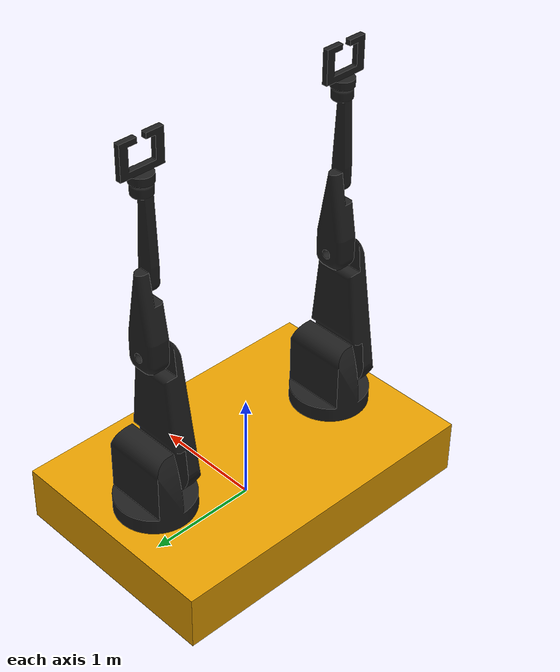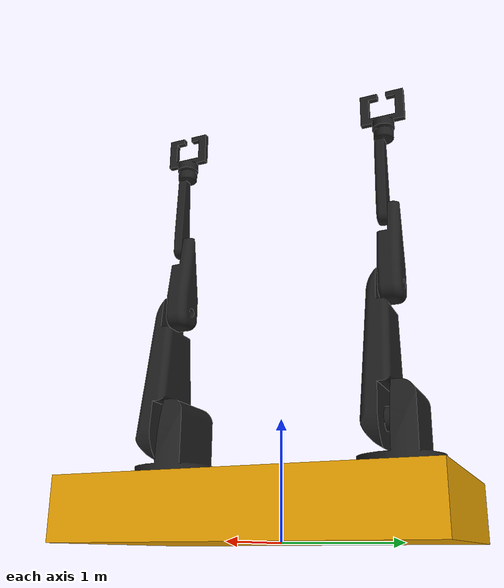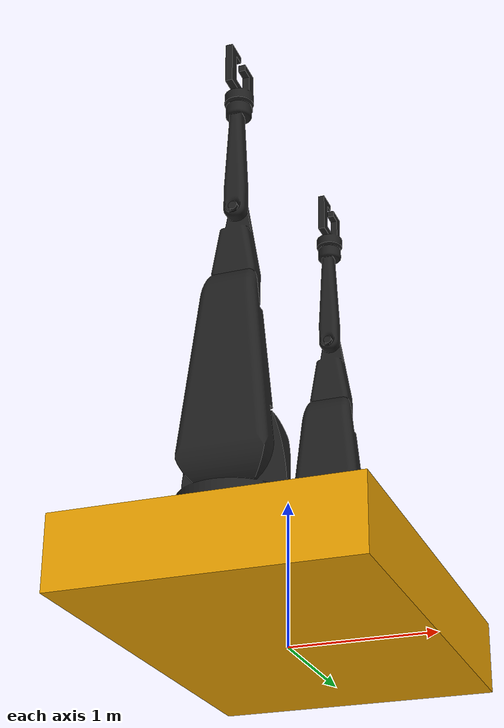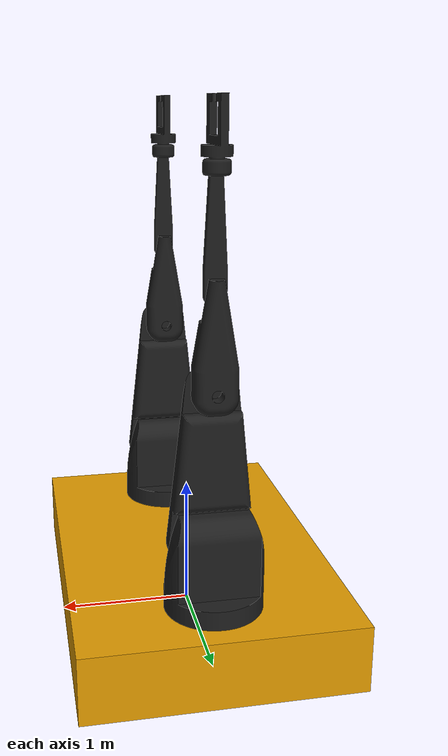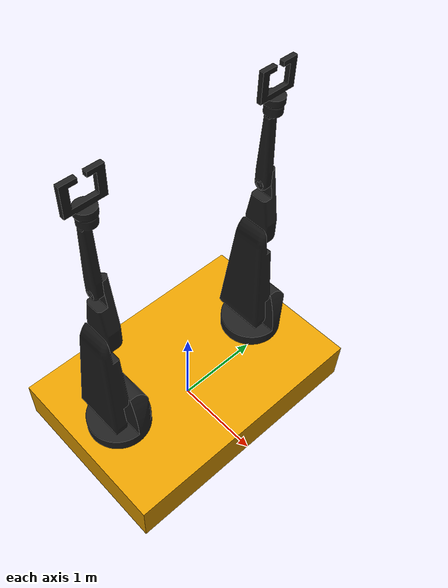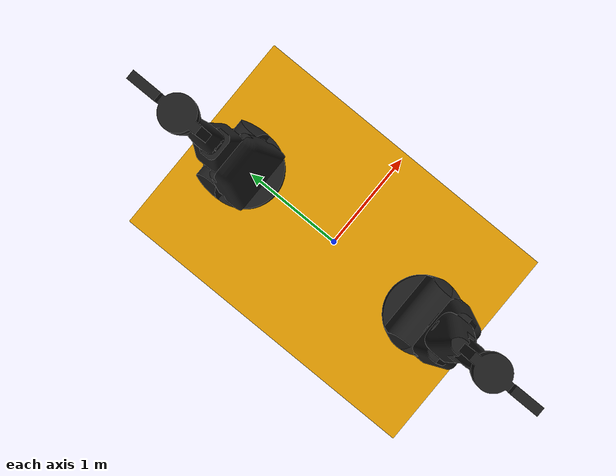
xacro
<?xml version="1.0" ?>

<robot name="tomato" xmlns:xacro="http://www.ros.org/wiki/xacro">

    <xacro:include filename="$(find tomato_description)/urdf/links_joints.xacro" />

    <!-- BGN ARM 0-->
    <m_link_box name="base_link"
              origin_rpy="0 0 0" origin_xyz="0 0 0.25"
              mass="10024"
              ixx="170.667" ixy="0" ixz="0"
              iyy="170.667" iyz="0"
              izz="170.667"
              size="2 3 0.5" />

    <m_joint name="base_link__link_01" type="revolute"
           axis_xyz="0 0 1"
           origin_rpy="0 0 0" origin_xyz="0 -1 0.5"
           parent="base_link" child="link_01"
           limit_e="1000" limit_l="-3.14" limit_u="3.14" limit_v="0.5" />

    <m_link_mesh name="link_01"
              origin_rpy="1.57 0 1.57" origin_xyz="-0.35 -0.35 0"
              mass="17.78"
              ixx="8.68" ixy="0" ixz="0"
              iyy="6.98" iyz="0"
              izz="5.98"
              meshfile="package://tomato_description/meshes/Link_1.STL"
              meshscale="0.001 0.001 0.001"/>

    <m_joint name="link_01__link_02" type="revolute"
           axis_xyz="0 1 0"
           origin_rpy="0 0 0" origin_xyz="0 0 0.44"
           parent="link_01" child="link_02"
           limit_e="1000" limit_l="-1.57" limit_u="1.57" limit_v="0.5" />

    <m_link_mesh name="link_02"
              origin_rpy="1.57 0 1.57" origin_xyz="-0.30 -0.25 -0.25"
              mass="10"
              ixx="12.679" ixy="0" ixz="0"
              iyy="12.679" iyz="0"
              izz="0.651"
              meshfile="package://tomato_description/meshes/Link_2.STL"
              meshscale="0.001 0.001 0.001"/>

    <m_joint name="link_02__link_03" type="revolute"
           axis_xyz="0 1 0"
           origin_rpy="0 0 0" origin_xyz="0 0 1.12"
           parent="link_02" child="link_03"
           limit_e="1000" limit_l="-1.57" limit_u="1.57" limit_v="0.5" />

    <m_link_mesh name="link_03"
              origin_rpy="1.57 0 1.57" origin_xyz="-0.15 -0.10 -0.15"
              mass="10"
              ixx="12.679" ixy="0" ixz="0"
              iyy="12.679" iyz="0"
              izz="0.651"
              meshfile="package://tomato_description/meshes/Link_3.STL"
              meshscale="0.001 0.001 0.001"/>

    <m_joint name="link_03__link_04" type="revolute"
           axis_xyz="0 1 0"
           origin_rpy="0 0 0" origin_xyz="0 0 0.64"
           parent="link_03" child="link_04"
           limit_e="1000" limit_l="-1.57" limit_u="1.57" limit_v="0.5" />

    <m_link_mesh name="link_04"
              origin_rpy="1.57 0 1.57" origin_xyz="-0.09 -0.10 -0.07"
              mass="10"
              ixx="12.679" ixy="0" ixz="0"
              iyy="12.679" iyz="0"
              izz="0.651"
              meshfile="package://tomato_description/meshes/Link_4.STL"
              meshscale="0.001 0.001 0.001"/>

    <m_joint name="link_04__link_05" type="revolute"
           axis_xyz="0 0 1"
           origin_rpy="0 0 0" origin_xyz="0 -0.01 0.8"
           parent="link_04" child="link_05"
           limit_e="1000" limit_l="-3.14" limit_u="3.14" limit_v="0.5" />

    <m_link_mesh name="link_05"
              origin_rpy="1.57 0 1.57" origin_xyz="-0.1 -0.2 0"
              mass="10"
              ixx="4.167" ixy="0" ixz="0"
              iyy="4.167" iyz="0"
              izz="4.167"
              meshfile="package://tomato_description/meshes/Link_5.STL"
              meshscale="0.001 0.001 0.001"/>

 <!--END ARM 0-->

 <!--BGN ARM 1-->

    <m_joint name="base_link__link_11" type="revolute"
           axis_xyz="0 0 1"
           origin_rpy="0 0 0" origin_xyz="0 1 0.5"
           parent="base_link" child="link_11"
           limit_e="1000" limit_l="-3.14" limit_u="3.14" limit_v="0.5" />

    <m_link_mesh name="link_11"
              origin_rpy="1.57 0 1.57" origin_xyz="-0.35 -0.35 0"
              mass="17.78"
              ixx="8.68" ixy="0" ixz="0"
              iyy="6.98" iyz="0"
              izz="5.98"
              meshfile="package://tomato_description/meshes/Link_1.STL"
              meshscale="0.001 0.001 0.001"/>

    <m_joint name="link_11__link_12" type="revolute"
           axis_xyz="0 1 0"
           origin_rpy="0 0 0" origin_xyz="0 0 0.44"
           parent="link_11" child="link_12"
           limit_e="1000" limit_l="-1.57" limit_u="1.57" limit_v="0.5" />

    <m_link_mesh name="link_12"
              origin_rpy="1.57 0 1.57" origin_xyz="-0.30 -0.25 -0.25"
              mass="0.1"
              ixx="12.679" ixy="0" ixz="0"
              iyy="12.679" iyz="0"
              izz="0.651"
              meshfile="package://tomato_description/meshes/Link_2.STL"
              meshscale="0.001 0.001 0.001"/>

    <m_joint name="link_12__link_13" type="revolute"
           axis_xyz="0 1 0"
           origin_rpy="0 0 0" origin_xyz="0 0 1.12"
           parent="link_12" child="link_13"
           limit_e="1000" limit_l="-1.57" limit_u="1.57" limit_v="0.5" />

    <m_link_mesh name="link_13"
              origin_rpy="1.57 0 1.57" origin_xyz="-0.15 -0.10 -0.15"
              mass="1"
              ixx="12.679" ixy="0" ixz="0"
              iyy="12.679" iyz="0"
              izz="0.651"
              meshfile="package://tomato_description/meshes/Link_3.STL"
              meshscale="0.001 0.001 0.001"/>

    <m_joint name="link_13__link_14" type="revolute"
           axis_xyz="0 1 0"
           origin_rpy="0 0 0" origin_xyz="0 0 0.64"
           parent="link_13" child="link_14"
           limit_e="1000" limit_l="-1.57" limit_u="1.57" limit_v="0.5" />

    <m_link_mesh name="link_14"
              origin_rpy="1.57 0 1.57" origin_xyz="-0.09 -0.10 -0.07"
              mass="0.1"
              ixx="12.679" ixy="0" ixz="0"
              iyy="12.679" iyz="0"
              izz="0.651"
              meshfile="package://tomato_description/meshes/Link_4.STL"
              meshscale="0.001 0.001 0.001"/>

    <m_joint name="link_14__link_15" type="revolute"
           axis_xyz="0 0 1"
           origin_rpy="0 0 0" origin_xyz="0 -0.01 0.8"
           parent="link_14" child="link_15"
           limit_e="1000" limit_l="-3.14" limit_u="3.14" limit_v="0.5" />

    <m_link_mesh name="link_15"
              origin_rpy="1.57 0 1.57" origin_xyz="-0.1 -0.2 0"
              mass="0.1"
              ixx="4.167" ixy="0" ixz="0"
              iyy="4.167" iyz="0"
              izz="4.167"
              meshfile="package://tomato_description/meshes/Link_5.STL"
              meshscale="0.001 0.001 0.001"/>

    <!--END ARM 1-->

    <gazebo>
        <plugin name="gazebo_ros_control" filename="libgazebo_ros_control.so">
        </plugin>
    </gazebo>

</robot>

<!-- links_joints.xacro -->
<robot xmlns:xacro="http://www.ros.org/wiki/xacro">

   <xacro:macro name="m_joint" params="name type axis_xyz origin_rpy origin_xyz parent child limit_e limit_l limit_u limit_v">
        <joint name="${name}" type="${type}">
            <axis xyz="${axis_xyz}" />
            <limit effort="${limit_e}" lower="${limit_l}" upper="${limit_u}" velocity="${limit_v}" />
            <origin rpy="${origin_rpy}" xyz="${origin_xyz}" />
            <parent link="${parent}" />
            <child link="${child}" />
        </joint>
        <transmission name="trans_${name}">
            <type>transmission_interface/SimpleTransmission</type>
            <joint name="${name}">
                <hardwareInterface>hardware_interface/EffortJointInterface</hardwareInterface>
            </joint>
            <actuator name="motor_${name}">
                <hardwareInterface>hardware_interface/EffortJointInterface</hardwareInterface>
                <mechanicalReduction>1</mechanicalReduction>
            </actuator>
        </transmission>
    </xacro:macro>

    <xacro:macro name="m_link_box" params="name origin_xyz origin_rpy size mass ixx ixy ixz iyy iyz izz">
        <link name="${name}">
        <inertial>
            <mass value="${mass}" />
            <origin rpy="${origin_rpy}" xyz="${origin_xyz}" />
            <inertia ixx="${ixx}" ixy="${ixy}" ixz="${ixz}" iyy="${iyy}" iyz="${iyz}" izz="${izz}" />
        </inertial>
        <collision>
            <origin rpy="${origin_rpy}" xyz="${origin_xyz}" />
            <geometry>
            <box size="${size}" />
            </geometry>
        </collision>
        <visual>
            <origin rpy="${origin_rpy}" xyz="${origin_xyz}" />
            <geometry>
            <box size="${size}" />
            </geometry>
        </visual>
        </link>
    </xacro:macro>

    <xacro:macro name="m_link_cylinder" params="name origin_xyz origin_rpy radius length mass ixx ixy ixz iyy iyz izz">
        <link name="${name}">
        <inertial>
            <mass value="${mass}" />
            <origin rpy="${origin_rpy}" xyz="${origin_xyz}" />
            <inertia ixx="${ixx}" ixy="${ixy}" ixz="${ixz}" iyy="${iyy}" iyz="${iyz}" izz="${izz}" />
        </inertial>
        <collision>
            <origin rpy="${origin_rpy}" xyz="${origin_xyz}" />
            <geometry>
            <cylinder radius="${radius}" length="${length}" />
            </geometry>
        </collision>
        <visual>
            <origin rpy="${origin_rpy}" xyz="${origin_xyz}" />
            <geometry>
            <cylinder radius="${radius}" length="${length}" />
            </geometry>
        </visual>
        </link>
    </xacro:macro>

  <xacro:macro name="m_link_mesh" params="name origin_xyz origin_rpy meshfile meshscale mass ixx ixy ixz iyy iyz izz">
    <link name="${name}">
      <inertial>
        <mass value="${mass}" />
        <origin rpy="${origin_rpy}" xyz="${origin_xyz}" />
        <inertia ixx="${ixx}" ixy="${ixy}" ixz="${ixz}" iyy="${iyy}" iyz="${iyz}" izz="${izz}" />
      </inertial>
      <collision>
        <origin rpy="${origin_rpy}" xyz="${origin_xyz}" />
        <geometry>
          <mesh filename="${meshfile}" scale="${meshscale}"/>
        </geometry>
      </collision>
      <visual>
        <origin rpy="${origin_rpy}" xyz="${origin_xyz}" />
        <geometry>
          <mesh filename="${meshfile}" scale="${meshscale}"/>
        </geometry>
        <material name="light_black"/>
      </visual>
    </link>
  </xacro:macro>
</robot>
